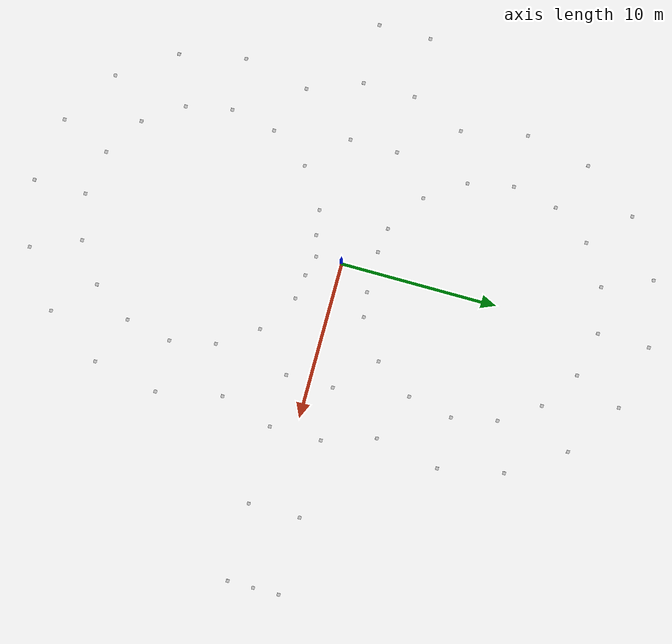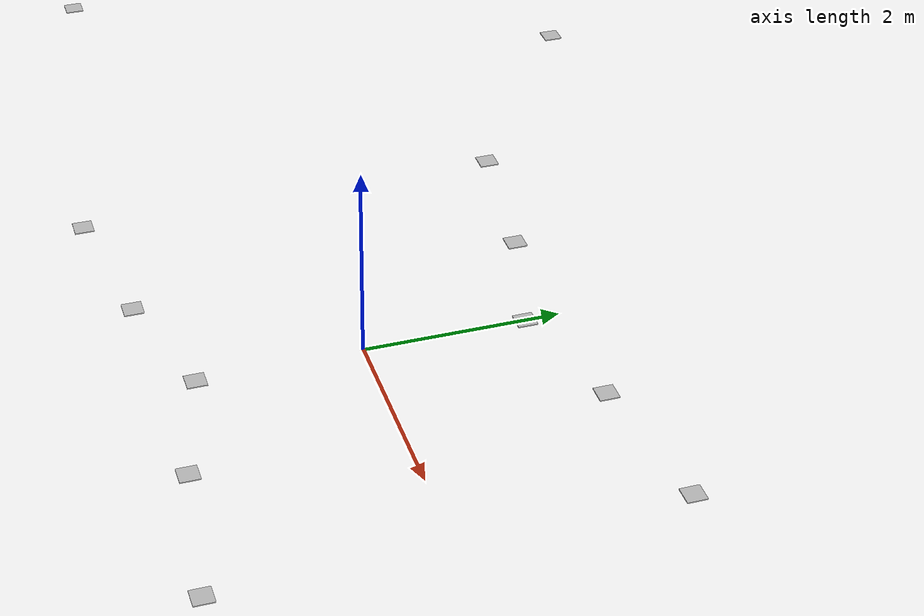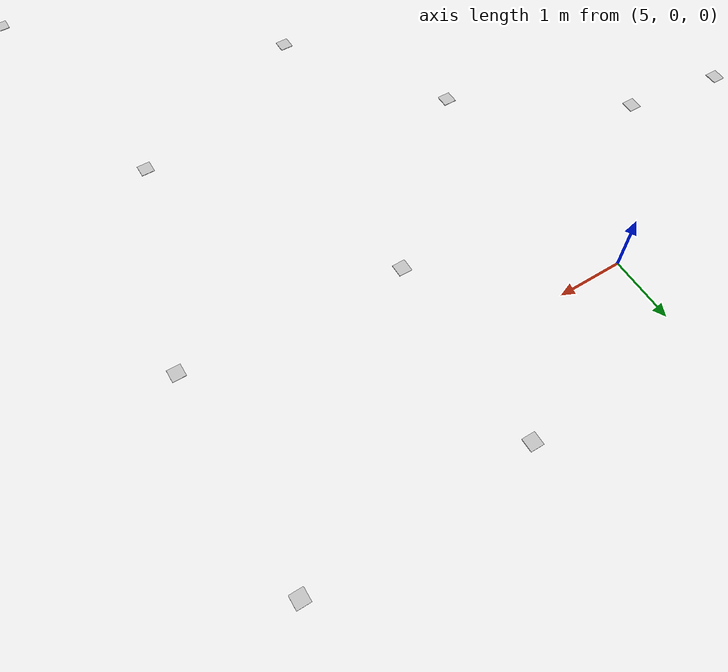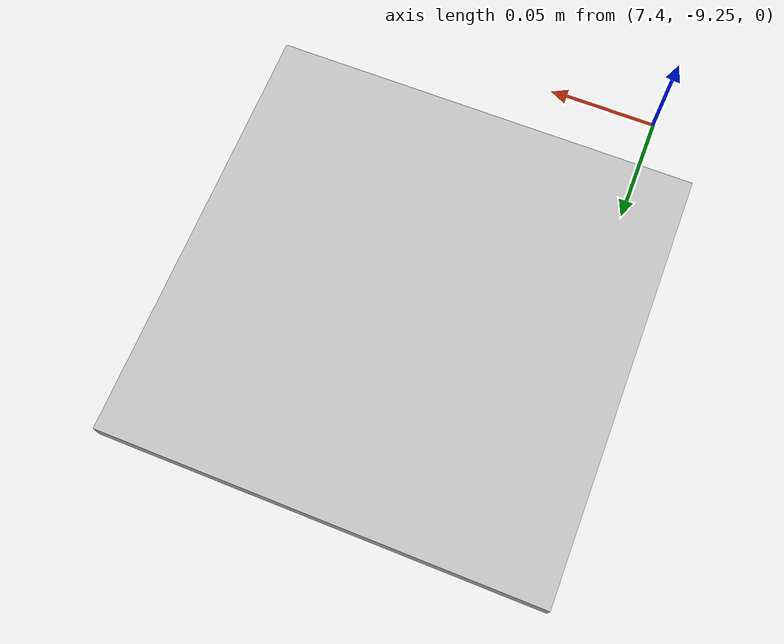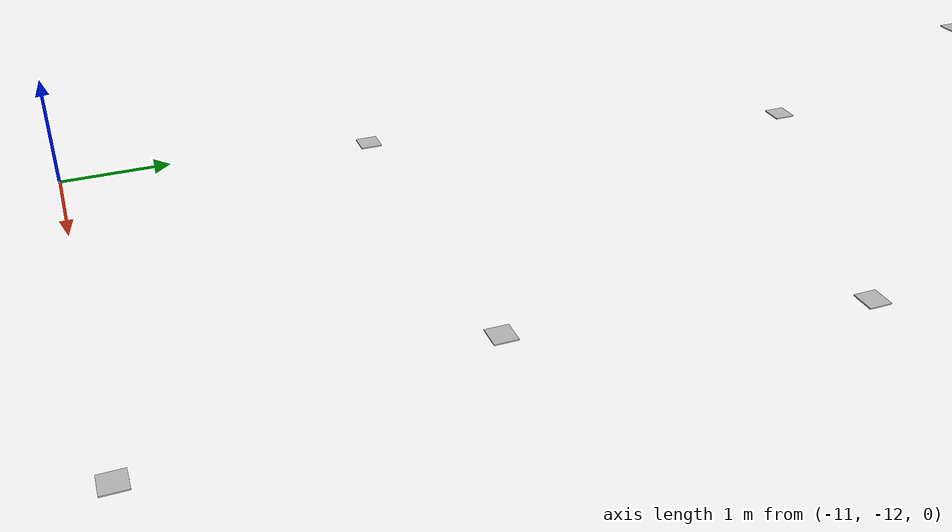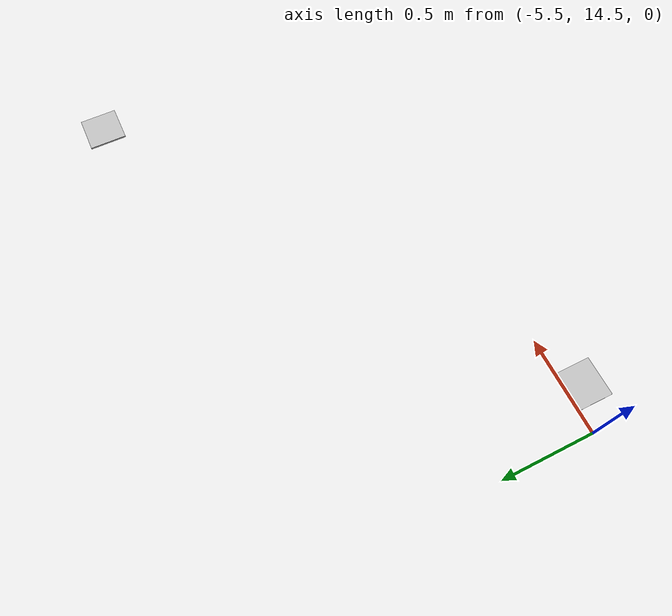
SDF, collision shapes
<?xml version='1.0' encoding='UTF-8'?>
<sdf version="1.4">
  <model name="some track">
    <include>
      <uri>model://cone_blue</uri>
      <pose>-0.0 1.6500000000000004 0 0 0 0</pose>
      <name>cone_right</name>
    </include>
    <include>
      <uri>model://cone_blue</uri>
      <pose>-2.860558656929046 2.2190004944781316 0 0 0 0</pose>
      <name>cone_right</name>
    </include>
    <include>
      <uri>model://cone_blue</uri>
      <pose>-5.285623189369442 3.839376810630557 0 0 0 0</pose>
      <name>cone_right</name>
    </include>
    <include>
      <uri>model://cone_blue</uri>
      <pose>-6.905999505521868 6.264441343070954 0 0 0 0</pose>
      <name>cone_right</name>
    </include>
    <include>
      <uri>model://cone_blue</uri>
      <pose>-7.475 9.125 0 0 0 0</pose>
      <name>cone_right</name>
    </include>
    <include>
      <uri>model://cone_blue</uri>
      <pose>-6.905999505521868 11.985558656929046 0 0 0 0</pose>
      <name>cone_right</name>
    </include>
    <include>
      <uri>model://cone_blue</uri>
      <pose>-5.285623189369443 14.410623189369442 0 0 0 0</pose>
      <name>cone_right</name>
    </include>
    <include>
      <uri>model://cone_blue</uri>
      <pose>-2.860558656929047 16.03099950552187 0 0 0 0</pose>
      <name>cone_right</name>
    </include>
    <include>
      <uri>model://cone_blue</uri>
      <pose>-9.154234823626465e-16 16.6 0 0 0 0</pose>
      <name>cone_right</name>
    </include>
    <include>
      <uri>model://cone_blue</uri>
      <pose>2.860558656929045 16.03099950552187 0 0 0 0</pose>
      <name>cone_right</name>
    </include>
    <include>
      <uri>model://cone_blue</uri>
      <pose>5.285623189369442 14.410623189369444 0 0 0 0</pose>
      <name>cone_right</name>
    </include>
    <include>
      <uri>model://cone_blue</uri>
      <pose>6.905999505521867 11.98555865692905 0 0 0 0</pose>
      <name>cone_right</name>
    </include>
    <include>
      <uri>model://cone_blue</uri>
      <pose>7.475 9.125000000000002 0 0 0 0</pose>
      <name>cone_right</name>
    </include>
    <include>
      <uri>model://cone_blue</uri>
      <pose>6.9059995055218675 6.264441343070953 0 0 0 0</pose>
      <name>cone_right</name>
    </include>
    <include>
      <uri>model://cone_blue</uri>
      <pose>5.285623189369444 3.839376810630559 0 0 0 0</pose>
      <name>cone_right</name>
    </include>
    <include>
      <uri>model://cone_blue</uri>
      <pose>2.8605586569290504 2.2190004944781334 0 0 0 0</pose>
      <name>cone_right</name>
    </include>
    <include>
      <uri>model://cone_blue</uri>
      <pose>7.619075567285049 -1.5059244327149495 0 0 0 0</pose>
      <name>cone_right</name>
    </include>
    <include>
      <uri>model://cone_blue</uri>
      <pose>9.954801962809116 -5.001586016266157 0 0 0 0</pose>
      <name>cone_right</name>
    </include>
    <include>
      <uri>model://cone_blue</uri>
      <pose>10.775 -9.125 0 0 0 0</pose>
      <name>cone_right</name>
    </include>
    <include>
      <uri>model://cone_blue</uri>
      <pose>9.954801962809116 -13.248413983733842 0 0 0 0</pose>
      <name>cone_right</name>
    </include>
    <include>
      <uri>model://cone_blue</uri>
      <pose>7.6190755672850505 -16.744075567285048 0 0 0 0</pose>
      <name>cone_right</name>
    </include>
    <include>
      <uri>model://cone_blue</uri>
      <pose>4.123413983733844 -19.079801962809114 0 0 0 0</pose>
      <name>cone_right</name>
    </include>
    <include>
      <uri>model://cone_blue</uri>
      <pose>1.3195569260812732e-15 -19.9 0 0 0 0</pose>
      <name>cone_right</name>
    </include>
    <include>
      <uri>model://cone_blue</uri>
      <pose>-4.123413983733841 -19.079801962809114 0 0 0 0</pose>
      <name>cone_right</name>
    </include>
    <include>
      <uri>model://cone_blue</uri>
      <pose>-7.619075567285049 -16.74407556728505 0 0 0 0</pose>
      <name>cone_right</name>
    </include>
    <include>
      <uri>model://cone_blue</uri>
      <pose>-9.954801962809112 -13.248413983733847 0 0 0 0</pose>
      <name>cone_right</name>
    </include>
    <include>
      <uri>model://cone_blue</uri>
      <pose>-10.775 -9.125000000000002 0 0 0 0</pose>
      <name>cone_right</name>
    </include>
    <include>
      <uri>model://cone_blue</uri>
      <pose>-9.954801962809114 -5.001586016266155 0 0 0 0</pose>
      <name>cone_right</name>
    </include>
    <include>
      <uri>model://cone_blue</uri>
      <pose>-7.619075567285051 -1.5059244327149521 0 0 0 0</pose>
      <name>cone_right</name>
    </include>
    <include>
      <uri>model://cone_yellow</uri>
      <pose>-7.619075567285049 1.5059244327149495 0 0 0 0</pose>
      <name>cone_left</name>
    </include>
    <include>
      <uri>model://cone_yellow</uri>
      <pose>-9.954801962809116 5.001586016266157 0 0 0 0</pose>
      <name>cone_left</name>
    </include>
    <include>
      <uri>model://cone_yellow</uri>
      <pose>-10.775 9.125 0 0 0 0</pose>
      <name>cone_left</name>
    </include>
    <include>
      <uri>model://cone_yellow</uri>
      <pose>-9.954801962809116 13.248413983733842 0 0 0 0</pose>
      <name>cone_left</name>
    </include>
    <include>
      <uri>model://cone_yellow</uri>
      <pose>-7.6190755672850505 16.744075567285048 0 0 0 0</pose>
      <name>cone_left</name>
    </include>
    <include>
      <uri>model://cone_yellow</uri>
      <pose>-4.123413983733844 19.079801962809114 0 0 0 0</pose>
      <name>cone_left</name>
    </include>
    <include>
      <uri>model://cone_yellow</uri>
      <pose>-1.3195569260812732e-15 19.9 0 0 0 0</pose>
      <name>cone_left</name>
    </include>
    <include>
      <uri>model://cone_yellow</uri>
      <pose>4.123413983733841 19.079801962809114 0 0 0 0</pose>
      <name>cone_left</name>
    </include>
    <include>
      <uri>model://cone_yellow</uri>
      <pose>7.619075567285049 16.74407556728505 0 0 0 0</pose>
      <name>cone_left</name>
    </include>
    <include>
      <uri>model://cone_yellow</uri>
      <pose>9.954801962809112 13.248413983733847 0 0 0 0</pose>
      <name>cone_left</name>
    </include>
    <include>
      <uri>model://cone_yellow</uri>
      <pose>10.775 9.125000000000002 0 0 0 0</pose>
      <name>cone_left</name>
    </include>
    <include>
      <uri>model://cone_yellow</uri>
      <pose>9.954801962809114 5.001586016266155 0 0 0 0</pose>
      <name>cone_left</name>
    </include>
    <include>
      <uri>model://cone_yellow</uri>
      <pose>7.619075567285051 1.5059244327149521 0 0 0 0</pose>
      <name>cone_left</name>
    </include>
    <include>
      <uri>model://cone_yellow</uri>
      <pose>0.0 -1.6500000000000004 0 0 0 0</pose>
      <name>cone_left</name>
    </include>
    <include>
      <uri>model://cone_yellow</uri>
      <pose>2.860558656929046 -2.2190004944781316 0 0 0 0</pose>
      <name>cone_left</name>
    </include>
    <include>
      <uri>model://cone_yellow</uri>
      <pose>5.285623189369442 -3.839376810630557 0 0 0 0</pose>
      <name>cone_left</name>
    </include>
    <include>
      <uri>model://cone_yellow</uri>
      <pose>6.905999505521868 -6.264441343070954 0 0 0 0</pose>
      <name>cone_left</name>
    </include>
    <include>
      <uri>model://cone_yellow</uri>
      <pose>7.475 -9.125 0 0 0 0</pose>
      <name>cone_left</name>
    </include>
    <include>
      <uri>model://cone_yellow</uri>
      <pose>6.905999505521868 -11.985558656929046 0 0 0 0</pose>
      <name>cone_left</name>
    </include>
    <include>
      <uri>model://cone_yellow</uri>
      <pose>5.285623189369443 -14.410623189369442 0 0 0 0</pose>
      <name>cone_left</name>
    </include>
    <include>
      <uri>model://cone_yellow</uri>
      <pose>2.860558656929047 -16.03099950552187 0 0 0 0</pose>
      <name>cone_left</name>
    </include>
    <include>
      <uri>model://cone_yellow</uri>
      <pose>9.154234823626465e-16 -16.6 0 0 0 0</pose>
      <name>cone_left</name>
    </include>
    <include>
      <uri>model://cone_yellow</uri>
      <pose>-2.860558656929045 -16.03099950552187 0 0 0 0</pose>
      <name>cone_left</name>
    </include>
    <include>
      <uri>model://cone_yellow</uri>
      <pose>-5.285623189369442 -14.410623189369444 0 0 0 0</pose>
      <name>cone_left</name>
    </include>
    <include>
      <uri>model://cone_yellow</uri>
      <pose>-6.905999505521867 -11.98555865692905 0 0 0 0</pose>
      <name>cone_left</name>
    </include>
    <include>
      <uri>model://cone_yellow</uri>
      <pose>-7.475 -9.125000000000002 0 0 0 0</pose>
      <name>cone_left</name>
    </include>
    <include>
      <uri>model://cone_yellow</uri>
      <pose>-6.9059995055218675 -6.264441343070953 0 0 0 0</pose>
      <name>cone_left</name>
    </include>
    <include>
      <uri>model://cone_yellow</uri>
      <pose>-5.285623189369444 -3.839376810630559 0 0 0 0</pose>
      <name>cone_left</name>
    </include>
    <include>
      <uri>model://cone_yellow</uri>
      <pose>-2.8605586569290504 -2.2190004944781334 0 0 0 0</pose>
      <name>cone_left</name>
    </include>
    <include>
      <uri>model://cone_orange</uri>
      <pose>-11.25 1.65 0 0 0 0</pose>
      <name>cone_orange</name>
    </include>
    <include>
      <uri>model://cone_orange</uri>
      <pose>-11.25 -1.65 0 0 0 0</pose>
      <name>cone_orange</name>
    </include>
    <include>
      <uri>model://cone_orange</uri>
      <pose>-15.0 1.65 0 0 0 0</pose>
      <name>cone_orange</name>
    </include>
    <include>
      <uri>model://cone_orange</uri>
      <pose>-15.0 -1.65 0 0 0 0</pose>
      <name>cone_orange</name>
    </include>
    <include>
      <uri>model://cone_orange</uri>
      <pose>11.0 1.65 0 0 0 0</pose>
      <name>cone_orange</name>
    </include>
    <include>
      <uri>model://cone_orange</uri>
      <pose>11.0 -1.65 0 0 0 0</pose>
      <name>cone_orange</name>
    </include>
    <include>
      <uri>model://cone_orange</uri>
      <pose>16.0 1.65 0 0 0 0</pose>
      <name>cone_orange</name>
    </include>
    <include>
      <uri>model://cone_orange</uri>
      <pose>16.0 -1.65 0 0 0 0</pose>
      <name>cone_orange</name>
    </include>
    <include>
      <uri>model://cone_orange</uri>
      <pose>21.0 1.65 0 0 0 0</pose>
      <name>cone_orange</name>
    </include>
    <include>
      <uri>model://cone_orange</uri>
      <pose>21.0 -1.65 0 0 0 0</pose>
      <name>cone_orange</name>
    </include>
    <include>
      <uri>model://cone_orange</uri>
      <pose>21.0 0.0 0 0 0 0</pose>
      <name>cone_orange</name>
    </include>
    <include>
      <uri>model://cone_orange</uri>
      <pose>21.0 1.65 0 0 0 0</pose>
      <name>cone_orange</name>
    </include>
    <include>
      <uri>model://cone_orange_big</uri>
      <pose>-1.3 2.0 0 0 0 0</pose>
      <name>cone_orange_big</name>
    </include>
    <include>
      <uri>model://cone_orange_big</uri>
      <pose>-1.3 -2.0 0 0 0 0</pose>
      <name>cone_orange_big</name>
    </include>
    <include>
      <uri>model://cone_orange_big</uri>
      <pose>1.3 2.0 0 0 0 0</pose>
      <name>cone_orange_big</name>
    </include>
    <include>
      <uri>model://cone_orange_big</uri>
      <pose>1.3 -2.0 0 0 0 0</pose>
      <name>cone_orange_big</name>
    </include>
  </model>
</sdf>

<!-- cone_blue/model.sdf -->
<sdf version='1.4'>
  <model name="cone_blue">
    <link name="link">
    <collision name="collision"><geometry><box><size> 0.2 0.2 0.01</size>
             </box></geometry></collision>
      <visual name="visual">
        <geometry>
          <mesh>
            <uri>model://BlueCone.dae</uri>
            <scale>1 1 1</scale>
          </mesh>
        </geometry>
        <material>
            <script>
              <uri>model://cone_blue/materials/scripts</uri>
              <uri>model://cone_blue/materials/textures</uri>
              <name>cone_blue/Image</name>
            </script>
        </material>
      </visual>
    </link>
  </model>
</sdf>

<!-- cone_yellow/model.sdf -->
<sdf version='1.4'>
  <model name="cone_yellow">
    <link name="link">
    <collision name="collision"><geometry><box><size> 0.2 0.2 0.01</size>
             </box></geometry></collision>
      <visual name="visual">
        <geometry>
          <mesh>
            <uri>model://YellowCone.dae</uri>
            <scale>1 1 1</scale>
          </mesh>
        </geometry>
        <material>
            <script>
              <uri>model://cone_yellow/materials/scripts</uri>
              <uri>model://cone_yellow/materials/textures</uri>
              <name>cone_yellow/Image</name>
            </script>
        </material>
      </visual>
    </link>
  </model>
</sdf>

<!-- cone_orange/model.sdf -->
<sdf version='1.4'>
  <model name="cone_blue">
    <link name="link">
      <collision name="collision"><geometry><box><size> 0.2 0.2 0.01</size>
               </box></geometry></collision>
      <visual name="visual">
        <geometry>
          <mesh>
            <uri>model://OrangeCone.dae</uri>
            <scale>1 1 1</scale>
          </mesh>
        </geometry>
      </visual>
    </link>
  </model>
</sdf>

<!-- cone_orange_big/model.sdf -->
<sdf version='1.4'>
  <model name="cone_orange_big">
    <link name="link">
    <collision name="collision"><geometry><box><size> 0.2 0.2 0.01</size>
             </box></geometry></collision>
      <visual name="visual">
        <geometry>
          <mesh>
            <uri>model://BigOrangeCone.dae</uri>
            <scale>1 1 1</scale>
          </mesh>
        </geometry>
        <material>
            <script>
              <uri>model://cone_orange_big/materials/scripts</uri>
              <uri>model://cone_orange_big/materials/textures</uri>
              <name>cone_orange_big/Image</name>
            </script>
        </material>
      </visual>
    </link>
  </model>
</sdf>
